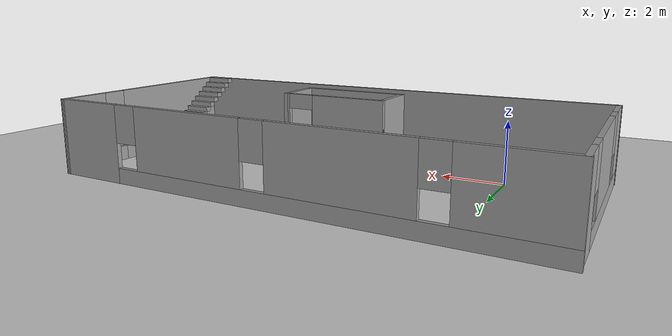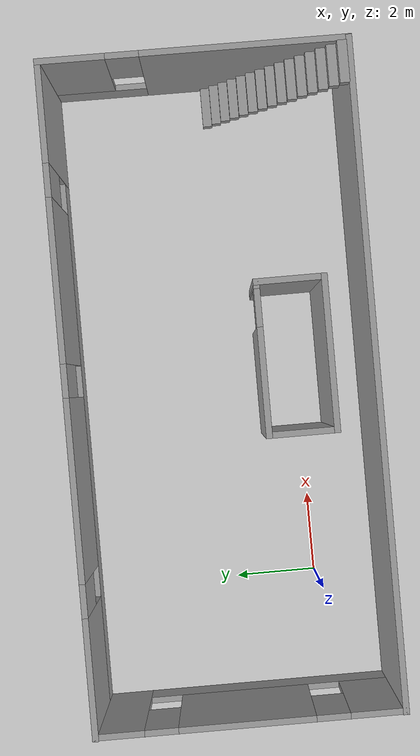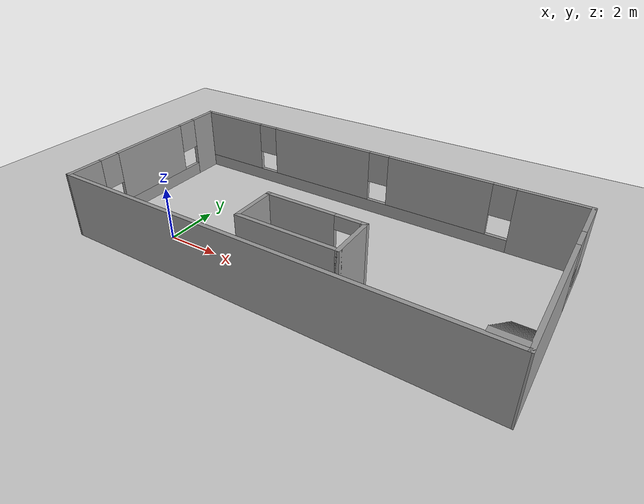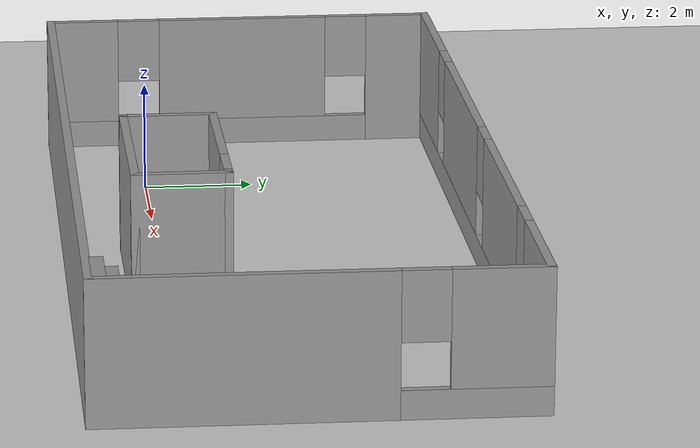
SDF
<sdf version="1.6">
 <world name="default">
  <light name="sun" type="directional">
   <pose>0 0 10 0 -0 0</pose>
   <diffuse>0.8 0.8 0.8 1</diffuse>
   <specular>0.2 0.2 0.2 1</specular>
   <attenuation>
    <range>1000</range>
    <constant>0.9</constant>
    <linear>0.01</linear>
    <quadratic>0.001</quadratic>
   </attenuation>
   <direction>-0.5 0.1 -0.9</direction>
  </light>
  <model name="ground_plane">
   <static>1</static>
   <link name="link">
    <collision name="collision">
     <geometry><plane><normal>0 0 1</normal><size>100 100</size></plane></geometry>
     <surface>
      <contact><collide_bitmask>65535</collide_bitmask></contact>
      <friction><ode><mu>100</mu><mu2>50</mu2></ode></friction>
     </surface>
    </collision>
    <visual name="visual">
     <cast_shadows>0</cast_shadows>
     <geometry><plane><normal>0 0 1</normal><size>100 100</size></plane></geometry>
     <material>
      <script><uri>file://media/materials/scripts/gazebo.material</uri><name>Gazebo/Grey</name></script>
     </material>
    </visual>
   </link>
  </model>
  <gravity>0 0 -9.8</gravity>
  <magnetic_field>6e-06 2.3e-05 -4.2e-05</magnetic_field>
  <atmosphere type="adiabatic"/>
  <physics name="default_physics" default="0" type="ode">
   <max_step_size>0.001</max_step_size>
   <real_time_factor>1</real_time_factor>
   <real_time_update_rate>1000</real_time_update_rate>
  </physics>
  <scene><ambient>0.4 0.4 0.4 1</ambient><background>0.7 0.7 0.7 1</background><shadows>1</shadows></scene>
  <audio><device>default</device></audio>
  <spherical_coordinates>
   <surface_model>EARTH_WGS84</surface_model>
   <latitude_deg>0</latitude_deg>
   <longitude_deg>0</longitude_deg>
   <elevation>0</elevation>
   <heading_deg>0</heading_deg>
  </spherical_coordinates>
  <model name="Room">
   <pose>5 2 0 0 -0 0</pose>
   <link name="Stairs_0">
    <visual name="Stairs_0_Visual_0">
     <pose>7.33244 -0.214185 0.083333 0 -0 0</pose>
     <geometry><box><size>1 0.233333 0.166667</size></box></geometry>
     <material>
      <script><uri>file://media/materials/scripts/gazebo.material</uri><name>Gazebo/Grey</name></script>
      <ambient>1 1 1 1</ambient>
     </material>
     <meta><layer>0</layer></meta>
    </visual>
    <collision name="Stairs_0_Collision_0">
     <geometry><box><size>1 0.233333 0.166667</size></box></geometry>
     <pose>7.33244 -0.214185 0.083333 0 -0 0</pose>
    </collision>
    <visual name="Stairs_0_Visual_1">
     <pose>7.33244 -0.447519 0.25 0 -0 0</pose>
     <geometry><box><size>1 0.233333 0.166667</size></box></geometry>
     <material>
      <script><uri>file://media/materials/scripts/gazebo.material</uri><name>Gazebo/Grey</name></script>
      <ambient>1 1 1 1</ambient>
     </material>
     <meta><layer>0</layer></meta>
    </visual>
    <collision name="Stairs_0_Collision_1">
     <geometry><box><size>1 0.233333 0.166667</size></box></geometry>
     <pose>7.33244 -0.447519 0.25 0 -0 0</pose>
    </collision>
    <visual name="Stairs_0_Visual_2">
     <pose>7.33244 -0.680852 0.416667 0 -0 0</pose>
     <geometry><box><size>1 0.233333 0.166667</size></box></geometry>
     <material>
      <script><uri>file://media/materials/scripts/gazebo.material</uri><name>Gazebo/Grey</name></script>
      <ambient>1 1 1 1</ambient>
     </material>
     <meta><layer>0</layer></meta>
    </visual>
    <collision name="Stairs_0_Collision_2">
     <geometry><box><size>1 0.233333 0.166667</size></box></geometry>
     <pose>7.33244 -0.680852 0.416667 0 -0 0</pose>
    </collision>
    <visual name="Stairs_0_Visual_3">
     <pose>7.33244 -0.914185 0.583333 0 -0 0</pose>
     <geometry><box><size>1 0.233333 0.166667</size></box></geometry>
     <material>
      <script><uri>file://media/materials/scripts/gazebo.material</uri><name>Gazebo/Grey</name></script>
      <ambient>1 1 1 1</ambient>
     </material>
     <meta><layer>0</layer></meta>
    </visual>
    <collision name="Stairs_0_Collision_3">
     <geometry><box><size>1 0.233333 0.166667</size></box></geometry>
     <pose>7.33244 -0.914185 0.583333 0 -0 0</pose>
    </collision>
    <visual name="Stairs_0_Visual_4">
     <pose>7.33244 -1.14752 0.75 0 -0 0</pose>
     <geometry><box><size>1 0.233333 0.166667</size></box></geometry>
     <material>
      <script><uri>file://media/materials/scripts/gazebo.material</uri><name>Gazebo/Grey</name></script>
      <ambient>1 1 1 1</ambient>
     </material>
     <meta><layer>0</layer></meta>
    </visual>
    <collision name="Stairs_0_Collision_4">
     <geometry><box><size>1 0.233333 0.166667</size></box></geometry>
     <pose>7.33244 -1.14752 0.75 0 -0 0</pose>
    </collision>
    <visual name="Stairs_0_Visual_5">
     <pose>7.33244 -1.38085 0.916667 0 -0 0</pose>
     <geometry><box><size>1 0.233333 0.166667</size></box></geometry>
     <material>
      <script><uri>file://media/materials/scripts/gazebo.material</uri><name>Gazebo/Grey</name></script>
      <ambient>1 1 1 1</ambient>
     </material>
     <meta><layer>0</layer></meta>
    </visual>
    <collision name="Stairs_0_Collision_5">
     <geometry><box><size>1 0.233333 0.166667</size></box></geometry>
     <pose>7.33244 -1.38085 0.916667 0 -0 0</pose>
    </collision>
    <visual name="Stairs_0_Visual_6">
     <pose>7.33244 -1.61418 1.08333 0 -0 0</pose>
     <geometry><box><size>1 0.233333 0.166667</size></box></geometry>
     <material>
      <script><uri>file://media/materials/scripts/gazebo.material</uri><name>Gazebo/Grey</name></script>
      <ambient>1 1 1 1</ambient>
     </material>
     <meta><layer>0</layer></meta>
    </visual>
    <collision name="Stairs_0_Collision_6">
     <geometry><box><size>1 0.233333 0.166667</size></box></geometry>
     <pose>7.33244 -1.61418 1.08333 0 -0 0</pose>
    </collision>
    <visual name="Stairs_0_Visual_7">
     <pose>7.33244 -1.84752 1.25 0 -0 0</pose>
     <geometry><box><size>1 0.233333 0.166667</size></box></geometry>
     <material>
      <script><uri>file://media/materials/scripts/gazebo.material</uri><name>Gazebo/Grey</name></script>
      <ambient>1 1 1 1</ambient>
     </material>
     <meta><layer>0</layer></meta>
    </visual>
    <collision name="Stairs_0_Collision_7">
     <geometry><box><size>1 0.233333 0.166667</size></box></geometry>
     <pose>7.33244 -1.84752 1.25 0 -0 0</pose>
    </collision>
    <visual name="Stairs_0_Visual_8">
     <pose>7.33244 -2.08085 1.41667 0 -0 0</pose>
     <geometry><box><size>1 0.233333 0.166667</size></box></geometry>
     <material>
      <script><uri>file://media/materials/scripts/gazebo.material</uri><name>Gazebo/Grey</name></script>
      <ambient>1 1 1 1</ambient>
     </material>
     <meta><layer>0</layer></meta>
    </visual>
    <collision name="Stairs_0_Collision_8">
     <geometry><box><size>1 0.233333 0.166667</size></box></geometry>
     <pose>7.33244 -2.08085 1.41667 0 -0 0</pose>
    </collision>
    <visual name="Stairs_0_Visual_9">
     <pose>7.33244 -2.31419 1.58333 0 -0 0</pose>
     <geometry><box><size>1 0.233333 0.166667</size></box></geometry>
     <material>
      <script><uri>file://media/materials/scripts/gazebo.material</uri><name>Gazebo/Grey</name></script>
      <ambient>1 1 1 1</ambient>
     </material>
     <meta><layer>0</layer></meta>
    </visual>
    <collision name="Stairs_0_Collision_9">
     <geometry><box><size>1 0.233333 0.166667</size></box></geometry>
     <pose>7.33244 -2.31419 1.58333 0 -0 0</pose>
    </collision>
    <visual name="Stairs_0_Visual_10">
     <pose>7.33244 -2.54752 1.75 0 -0 0</pose>
     <geometry><box><size>1 0.233333 0.166667</size></box></geometry>
     <material>
      <script><uri>file://media/materials/scripts/gazebo.material</uri><name>Gazebo/Grey</name></script>
      <ambient>1 1 1 1</ambient>
     </material>
     <meta><layer>0</layer></meta>
    </visual>
    <collision name="Stairs_0_Collision_10">
     <geometry><box><size>1 0.233333 0.166667</size></box></geometry>
     <pose>7.33244 -2.54752 1.75 0 -0 0</pose>
    </collision>
    <visual name="Stairs_0_Visual_11">
     <pose>7.33244 -2.78085 1.91667 0 -0 0</pose>
     <geometry><box><size>1 0.233333 0.166667</size></box></geometry>
     <material>
      <script><uri>file://media/materials/scripts/gazebo.material</uri><name>Gazebo/Grey</name></script>
      <ambient>1 1 1 1</ambient>
     </material>
     <meta><layer>0</layer></meta>
    </visual>
    <collision name="Stairs_0_Collision_11">
     <geometry><box><size>1 0.233333 0.166667</size></box></geometry>
     <pose>7.33244 -2.78085 1.91667 0 -0 0</pose>
    </collision>
    <visual name="Stairs_0_Visual_12">
     <pose>7.33244 -3.01418 2.08333 0 -0 0</pose>
     <geometry><box><size>1 0.233333 0.166667</size></box></geometry>
     <material>
      <script><uri>file://media/materials/scripts/gazebo.material</uri><name>Gazebo/Grey</name></script>
      <ambient>1 1 1 1</ambient>
     </material>
     <meta><layer>0</layer></meta>
    </visual>
    <collision name="Stairs_0_Collision_12">
     <geometry><box><size>1 0.233333 0.166667</size></box></geometry>
     <pose>7.33244 -3.01418 2.08333 0 -0 0</pose>
    </collision>
    <visual name="Stairs_0_Visual_13">
     <pose>7.33244 -3.24752 2.25 0 -0 0</pose>
     <geometry><box><size>1 0.233333 0.166667</size></box></geometry>
     <material>
      <script><uri>file://media/materials/scripts/gazebo.material</uri><name>Gazebo/Grey</name></script>
      <ambient>1 1 1 1</ambient>
     </material>
     <meta><layer>0</layer></meta>
    </visual>
    <collision name="Stairs_0_Collision_13">
     <geometry><box><size>1 0.233333 0.166667</size></box></geometry>
     <pose>7.33244 -3.24752 2.25 0 -0 0</pose>
    </collision>
    <visual name="Stairs_0_Visual_14">
     <pose>7.33244 -3.48085 2.41667 0 -0 0</pose>
     <geometry><box><size>1 0.233333 0.166667</size></box></geometry>
     <material>
      <script><uri>file://media/materials/scripts/gazebo.material</uri><name>Gazebo/Grey</name></script>
      <ambient>1 1 1 1</ambient>
     </material>
     <meta><layer>0</layer></meta>
    </visual>
    <collision name="Stairs_0_Collision_14">
     <geometry><box><size>1 0.233333 0.166667</size></box></geometry>
     <pose>7.33244 -3.48085 2.41667 0 -0 0</pose>
    </collision>
   </link>
   <link name="Wall_0">
    <collision name="Wall_0_Collision">
     <geometry><box><size>15.9511 0.15 2.5</size></box></geometry>
     <pose>0 0 1.25 0 -0 0</pose>
    </collision>
    <visual name="Wall_0_Visual">
     <pose>0 0 1.25 0 -0 0</pose>
     <geometry><box><size>15.9511 0.15 2.5</size></box></geometry>
     <material>
      <script><uri>file://media/materials/scripts/gazebo.material</uri><name>Gazebo/Grey</name></script>
      <ambient>1 1 1 1</ambient>
     </material>
     <meta><layer>0</layer></meta>
    </visual>
    <pose>-0.025497 -3.64449 0 0 -0 -0.001273</pose>
   </link>
   <link name="Wall_1">
    <pose>7.91156 0 0 0 -0 1.56443</pose>
    <visual name="Wall_1_Visual_0">
     <pose>-1.22961 0 1.25 0 -0 0</pose>
     <geometry><box><size>4.99988 0.15 2.5</size></box></geometry>
     <material>
      <script><uri>file://media/materials/scripts/gazebo.material</uri><name>Gazebo/Grey</name></script>
      <ambient>1 1 1 1</ambient>
     </material>
     <meta><layer>0</layer></meta>
    </visual>
    <collision name="Wall_1_Collision_0">
     <geometry><box><size>4.99988 0.15 2.5</size></box></geometry>
     <pose>-1.22961 0 1.25 0 -0 0</pose>
    </collision>
    <visual name="Wall_1_Visual_1">
     <pose>2.49994 0 0.25 0 -0 0</pose>
     <geometry><box><size>2.45921 0.15 0.5</size></box></geometry>
     <material>
      <script><uri>file://media/materials/scripts/gazebo.material</uri><name>Gazebo/Grey</name></script>
      <ambient>1 1 1 1</ambient>
     </material>
     <meta><layer>0</layer></meta>
    </visual>
    <collision name="Wall_1_Collision_1">
     <geometry><box><size>2.45921 0.15 0.5</size></box></geometry>
     <pose>2.49994 0 0.25 0 -0 0</pose>
    </collision>
    <visual name="Wall_1_Visual_2">
     <pose>2.89994 0 1.5 0 -0 0</pose>
     <geometry><box><size>1.65921 0.15 2</size></box></geometry>
     <material>
      <script><uri>file://media/materials/scripts/gazebo.material</uri><name>Gazebo/Grey</name></script>
      <ambient>1 1 1 1</ambient>
     </material>
     <meta><layer>0</layer></meta>
    </visual>
    <collision name="Wall_1_Collision_2">
     <geometry><box><size>1.65921 0.15 2</size></box></geometry>
     <pose>2.89994 0 1.5 0 -0 0</pose>
    </collision>
    <visual name="Wall_1_Visual_3">
     <pose>1.67034 0 1.9 0 -0 0</pose>
     <geometry><box><size>0.8 0.15 1.2</size></box></geometry>
     <material>
      <script><uri>file://media/materials/scripts/gazebo.material</uri><name>Gazebo/Grey</name></script>
      <ambient>1 1 1 1</ambient>
     </material>
     <meta><layer>0</layer></meta>
    </visual>
    <collision name="Wall_1_Collision_3">
     <geometry><box><size>0.8 0.15 1.2</size></box></geometry>
     <pose>1.67034 0 1.9 0 -0 0</pose>
    </collision>
   </link>
   <link name="Wall_2">
    <pose>-0.010294 3.65455 0 0 -0 3.14159</pose>
    <visual name="Wall_2_Visual_0">
     <pose>-6.78542 0 1.25 0 -0 0</pose>
     <geometry><box><size>2.42917 0.15 2.5</size></box></geometry>
     <material>
      <script><uri>file://media/materials/scripts/gazebo.material</uri><name>Gazebo/Grey</name></script>
      <ambient>1 1 1 1</ambient>
     </material>
     <meta><layer>0</layer></meta>
    </visual>
    <collision name="Wall_2_Collision_0">
     <geometry><box><size>2.42917 0.15 2.5</size></box></geometry>
     <pose>-6.78542 0 1.25 0 -0 0</pose>
    </collision>
    <visual name="Wall_2_Visual_1">
     <pose>1.21458 0 0.25 0 -0 0</pose>
     <geometry><box><size>13.5708 0.15 0.5</size></box></geometry>
     <material>
      <script><uri>file://media/materials/scripts/gazebo.material</uri><name>Gazebo/Grey</name></script>
      <ambient>1 1 1 1</ambient>
     </material>
     <meta><layer>0</layer></meta>
    </visual>
    <collision name="Wall_2_Collision_1">
     <geometry><box><size>13.5708 0.15 0.5</size></box></geometry>
     <pose>1.21458 0 0.25 0 -0 0</pose>
    </collision>
    <visual name="Wall_2_Visual_2">
     <pose>-2.81539 0 1.5 0 -0 0</pose>
     <geometry><box><size>3.9109 0.15 2</size></box></geometry>
     <material>
      <script><uri>file://media/materials/scripts/gazebo.material</uri><name>Gazebo/Grey</name></script>
      <ambient>1 1 1 1</ambient>
     </material>
     <meta><layer>0</layer></meta>
    </visual>
    <collision name="Wall_2_Collision_2">
     <geometry><box><size>3.9109 0.15 2</size></box></geometry>
     <pose>-2.81539 0 1.5 0 -0 0</pose>
    </collision>
    <visual name="Wall_2_Visual_3">
     <pose>2.12494 0 1.5 0 -0 0</pose>
     <geometry><box><size>4.36975 0.15 2</size></box></geometry>
     <material>
      <script><uri>file://media/materials/scripts/gazebo.material</uri><name>Gazebo/Grey</name></script>
      <ambient>1 1 1 1</ambient>
     </material>
     <meta><layer>0</layer></meta>
    </visual>
    <collision name="Wall_2_Collision_3">
     <geometry><box><size>4.36975 0.15 2</size></box></geometry>
     <pose>2.12494 0 1.5 0 -0 0</pose>
    </collision>
    <visual name="Wall_2_Visual_4">
     <pose>6.5549 0 1.5 0 -0 0</pose>
     <geometry><box><size>2.89019 0.15 2</size></box></geometry>
     <material>
      <script><uri>file://media/materials/scripts/gazebo.material</uri><name>Gazebo/Grey</name></script>
      <ambient>1 1 1 1</ambient>
     </material>
     <meta><layer>0</layer></meta>
    </visual>
    <collision name="Wall_2_Collision_4">
     <geometry><box><size>2.89019 0.15 2</size></box></geometry>
     <pose>6.5549 0 1.5 0 -0 0</pose>
    </collision>
    <visual name="Wall_2_Visual_5">
     <pose>-5.17083 0 1.9 0 -0 0</pose>
     <geometry><box><size>0.8 0.15 1.2</size></box></geometry>
     <material>
      <script><uri>file://media/materials/scripts/gazebo.material</uri><name>Gazebo/Grey</name></script>
      <ambient>1 1 1 1</ambient>
     </material>
     <meta><layer>0</layer></meta>
    </visual>
    <collision name="Wall_2_Collision_5">
     <geometry><box><size>0.8 0.15 1.2</size></box></geometry>
     <pose>-5.17083 0 1.9 0 -0 0</pose>
    </collision>
    <visual name="Wall_2_Visual_6">
     <pose>-0.459938 0 1.9 0 -0 0</pose>
     <geometry><box><size>0.8 0.15 1.2</size></box></geometry>
     <material>
      <script><uri>file://media/materials/scripts/gazebo.material</uri><name>Gazebo/Grey</name></script>
      <ambient>1 1 1 1</ambient>
     </material>
     <meta><layer>0</layer></meta>
    </visual>
    <collision name="Wall_2_Collision_6">
     <geometry><box><size>0.8 0.15 1.2</size></box></geometry>
     <pose>-0.459938 0 1.9 0 -0 0</pose>
    </collision>
    <visual name="Wall_2_Visual_7">
     <pose>4.70981 0 1.9 0 -0 0</pose>
     <geometry><box><size>0.8 0.15 1.2</size></box></geometry>
     <material>
      <script><uri>file://media/materials/scripts/gazebo.material</uri><name>Gazebo/Grey</name></script>
      <ambient>1 1 1 1</ambient>
     </material>
     <meta><layer>0</layer></meta>
    </visual>
    <collision name="Wall_2_Collision_7">
     <geometry><box><size>0.8 0.15 1.2</size></box></geometry>
     <pose>4.70981 0 1.9 0 -0 0</pose>
    </collision>
   </link>
   <link name="Wall_3">
    <pose>-7.91401 0.010057 0 0 -0 -1.57048</pose>
    <visual name="Wall_3_Visual_0">
     <pose>-3.10401 0 1.25 0 -0 0</pose>
     <geometry><box><size>1.23096 0.15 2.5</size></box></geometry>
     <material>
      <script><uri>file://media/materials/scripts/gazebo.material</uri><name>Gazebo/Grey</name></script>
      <ambient>1 1 1 1</ambient>
     </material>
     <meta><layer>0</layer></meta>
    </visual>
    <collision name="Wall_3_Collision_0">
     <geometry><box><size>1.23096 0.15 2.5</size></box></geometry>
     <pose>-3.10401 0 1.25 0 -0 0</pose>
    </collision>
    <visual name="Wall_3_Visual_1">
     <pose>0.61548 0 0.25 0 -0 0</pose>
     <geometry><box><size>6.20802 0.15 0.5</size></box></geometry>
     <material>
      <script><uri>file://media/materials/scripts/gazebo.material</uri><name>Gazebo/Grey</name></script>
      <ambient>1 1 1 1</ambient>
     </material>
     <meta><layer>0</layer></meta>
    </visual>
    <collision name="Wall_3_Collision_1">
     <geometry><box><size>6.20802 0.15 0.5</size></box></geometry>
     <pose>0.61548 0 0.25 0 -0 0</pose>
    </collision>
    <visual name="Wall_3_Visual_2">
     <pose>-0.069576 0 1.5 0 -0 0</pose>
     <geometry><box><size>3.23791 0.15 2</size></box></geometry>
     <material>
      <script><uri>file://media/materials/scripts/gazebo.material</uri><name>Gazebo/Grey</name></script>
      <ambient>1 1 1 1</ambient>
     </material>
     <meta><layer>0</layer></meta>
    </visual>
    <collision name="Wall_3_Collision_2">
     <geometry><box><size>3.23791 0.15 2</size></box></geometry>
     <pose>-0.069576 0 1.5 0 -0 0</pose>
    </collision>
    <visual name="Wall_3_Visual_3">
     <pose>3.03444 0 1.5 0 -0 0</pose>
     <geometry><box><size>1.37011 0.15 2</size></box></geometry>
     <material>
      <script><uri>file://media/materials/scripts/gazebo.material</uri><name>Gazebo/Grey</name></script>
      <ambient>1 1 1 1</ambient>
     </material>
     <meta><layer>0</layer></meta>
    </visual>
    <collision name="Wall_3_Collision_3">
     <geometry><box><size>1.37011 0.15 2</size></box></geometry>
     <pose>3.03444 0 1.5 0 -0 0</pose>
    </collision>
    <visual name="Wall_3_Visual_4">
     <pose>-2.08853 0 1.9 0 -0 0</pose>
     <geometry><box><size>0.8 0.15 1.2</size></box></geometry>
     <material>
      <script><uri>file://media/materials/scripts/gazebo.material</uri><name>Gazebo/Grey</name></script>
      <ambient>1 1 1 1</ambient>
     </material>
     <meta><layer>0</layer></meta>
    </visual>
    <collision name="Wall_3_Collision_4">
     <geometry><box><size>0.8 0.15 1.2</size></box></geometry>
     <pose>-2.08853 0 1.9 0 -0 0</pose>
    </collision>
    <visual name="Wall_3_Visual_5">
     <pose>1.94938 0 1.9 0 -0 0</pose>
     <geometry><box><size>0.8 0.15 1.2</size></box></geometry>
     <material>
      <script><uri>file://media/materials/scripts/gazebo.material</uri><name>Gazebo/Grey</name></script>
      <ambient>1 1 1 1</ambient>
     </material>
     <meta><layer>0</layer></meta>
    </visual>
    <collision name="Wall_3_Collision_5">
     <geometry><box><size>0.8 0.15 1.2</size></box></geometry>
     <pose>1.94938 0 1.9 0 -0 0</pose>
    </collision>
   </link>
   <link name="Wall_5">
    <collision name="Wall_5_Collision">
     <geometry><box><size>3.75 0.15 2.5</size></box></geometry>
     <pose>0 0 1.25 0 -0 0</pose>
    </collision>
    <visual name="Wall_5_Visual">
     <pose>0 0 1.25 0 -0 0</pose>
     <geometry><box><size>3.75 0.15 2.5</size></box></geometry>
     <material>
      <script><uri>file://media/materials/scripts/gazebo.material</uri><name>Gazebo/Grey</name></script>
      <ambient>1 1 1 1</ambient>
     </material>
     <meta><layer>0</layer></meta>
    </visual>
    <pose>0.572043 -2.60348 0 0 -0 0</pose>
   </link>
   <link name="Wall_6">
    <collision name="Wall_6_Collision">
     <geometry><box><size>1.75 0.15 2.5</size></box></geometry>
     <pose>0 0 1.25 0 -0 0</pose>
    </collision>
    <visual name="Wall_6_Visual">
     <pose>0 0 1.25 0 -0 0</pose>
     <geometry><box><size>1.75 0.15 2.5</size></box></geometry>
     <material>
      <script><uri>file://media/materials/scripts/gazebo.material</uri><name>Gazebo/Grey</name></script>
      <ambient>1 1 1 1</ambient>
     </material>
     <meta><layer>0</layer></meta>
    </visual>
    <pose>2.37204 -1.80348 0 0 -0 1.5708</pose>
   </link>
   <link name="Wall_7">
    <pose>0.572043 -1.00348 0 0 -0 3.14159</pose>
    <visual name="Wall_7_Visual_0">
     <pose>-1.75899 0 1.25 0 -0 0</pose>
     <geometry><box><size>0.23202 0.15 2.5</size></box></geometry>
     <material>
      <script><uri>file://media/materials/scripts/gazebo.material</uri><name>Gazebo/Grey</name></script>
      <ambient>1 1 1 1</ambient>
     </material>
     <meta><layer>0</layer></meta>
    </visual>
    <collision name="Wall_7_Collision_0">
     <geometry><box><size>0.23202 0.15 2.5</size></box></geometry>
     <pose>-1.75899 0 1.25 0 -0 0</pose>
    </collision>
    <visual name="Wall_7_Visual_1">
     <pose>0.56601 0 1.25 0 -0 0</pose>
     <geometry><box><size>2.61798 0.15 2.5</size></box></geometry>
     <material>
      <script><uri>file://media/materials/scripts/gazebo.material</uri><name>Gazebo/Grey</name></script>
      <ambient>1 1 1 1</ambient>
     </material>
     <meta><layer>0</layer></meta>
    </visual>
    <collision name="Wall_7_Collision_1">
     <geometry><box><size>2.61798 0.15 2.5</size></box></geometry>
     <pose>0.56601 0 1.25 0 -0 0</pose>
    </collision>
    <visual name="Wall_7_Visual_2">
     <pose>-1.19298 0 2.25 0 -0 0</pose>
     <geometry><box><size>0.9 0.15 0.5</size></box></geometry>
     <material>
      <script><uri>file://media/materials/scripts/gazebo.material</uri><name>Gazebo/Grey</name></script>
      <ambient>1 1 1 1</ambient>
     </material>
     <meta><layer>0</layer></meta>
    </visual>
    <collision name="Wall_7_Collision_2">
     <geometry><box><size>0.9 0.15 0.5</size></box></geometry>
     <pose>-1.19298 0 2.25 0 -0 0</pose>
    </collision>
   </link>
   <link name="Wall_8">
    <collision name="Wall_8_Collision">
     <geometry><box><size>1.75 0.15 2.5</size></box></geometry>
     <pose>0 0 1.25 0 -0 0</pose>
    </collision>
    <visual name="Wall_8_Visual">
     <pose>0 0 1.25 0 -0 0</pose>
     <geometry><box><size>1.75 0.15 2.5</size></box></geometry>
     <material>
      <script><uri>file://media/materials/scripts/gazebo.material</uri><name>Gazebo/Grey</name></script>
      <ambient>1 1 1 1</ambient>
     </material>
     <meta><layer>0</layer></meta>
    </visual>
    <pose>-1.22796 -1.80348 0 0 -0 -1.5708</pose>
   </link>
   <static>1</static>
  </model>
 </world>
</sdf>
